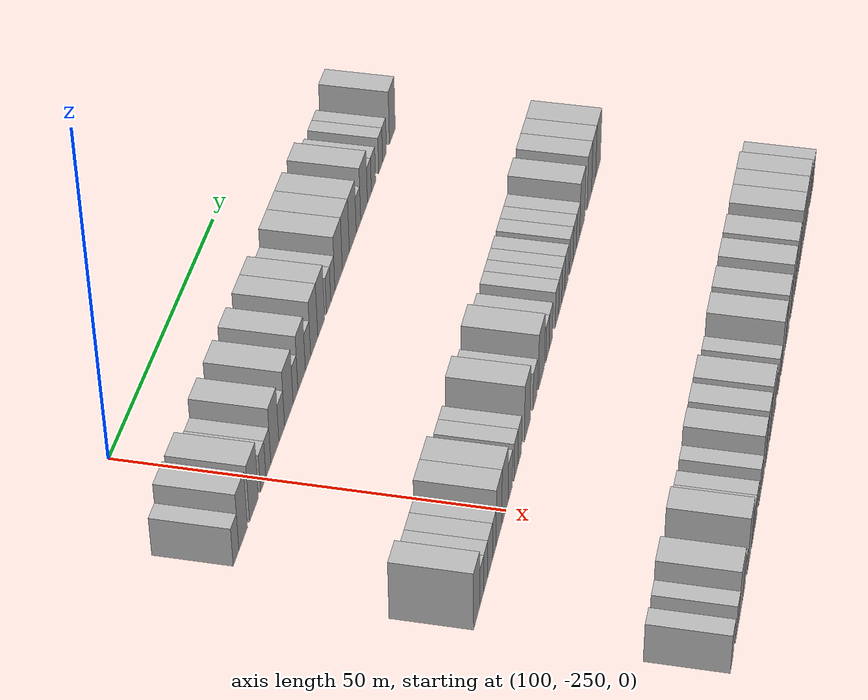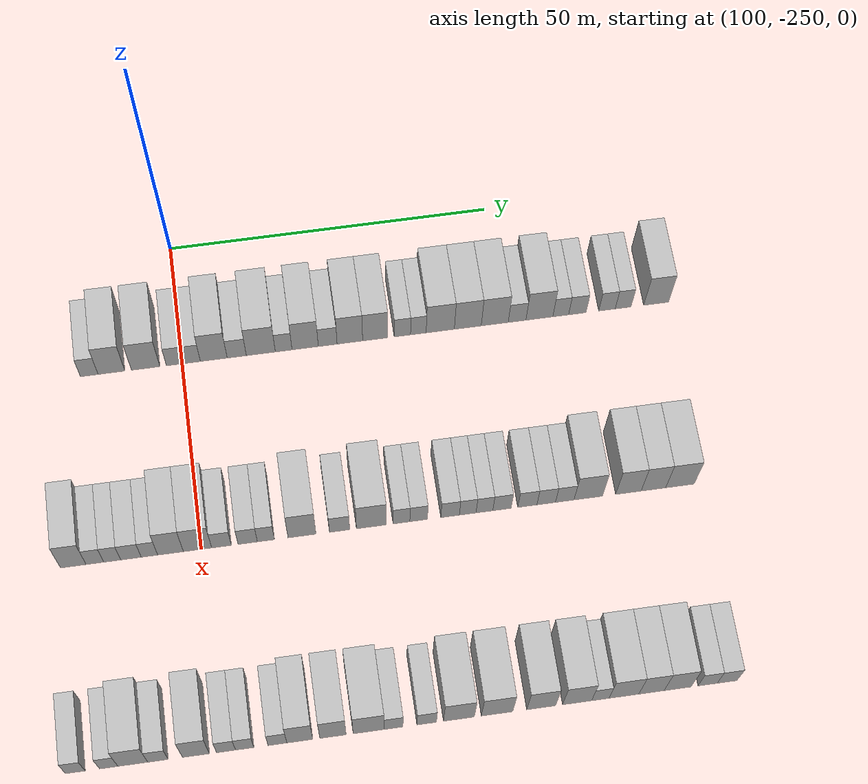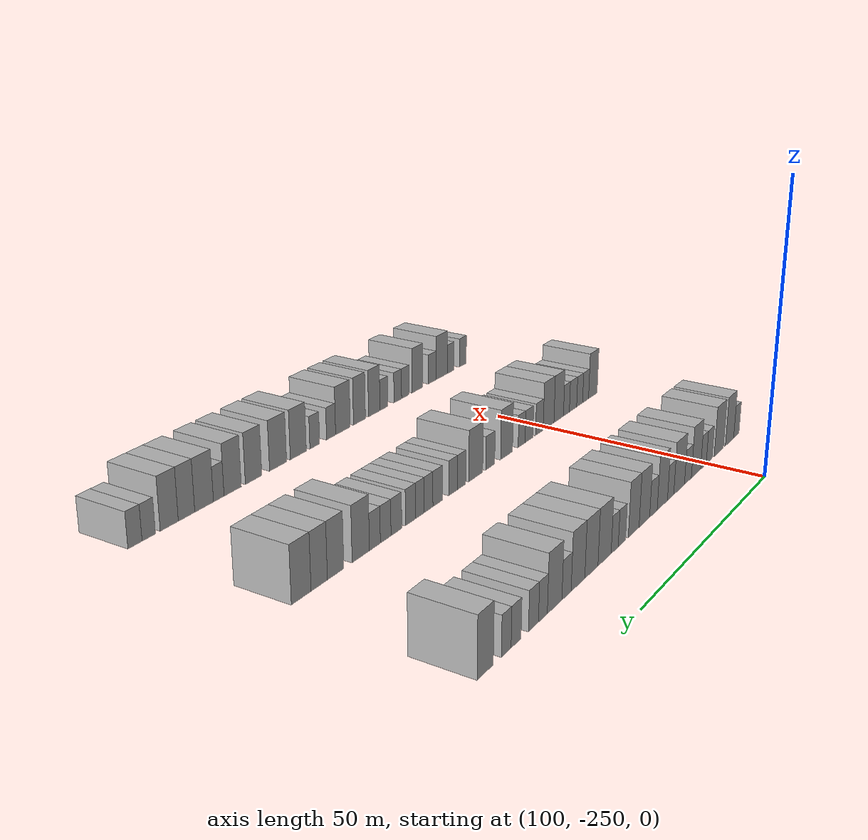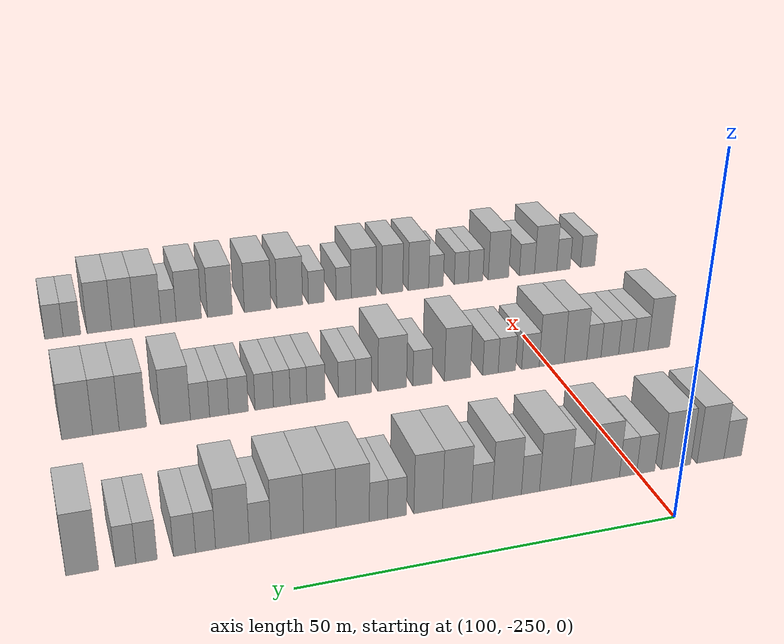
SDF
<sdf version="1.6">
 <world name="default">
  <model name="building_761">
   <static>1</static>
   <pose>115.0000 -264.1922 0 0.000000 0.000000 0.000000</pose>
   <link name="link">
    <pose>0 0 3.00 0 0 0</pose>
    <collision name="collision"><geometry><box><size>10.0000 2.6945 6.0000</size></box></geometry></collision>
    <visual name="visual">
     <cast_shadows>0</cast_shadows>
     <geometry><box><size>10.0000 2.6945 6.0000</size></box></geometry>
     <material>
      <script>
       <uri>model://HANNAS_wall/materials/scripts</uri>
       <uri>model://HANNAS_wall/materials/textures</uri>
       <name>vrc/HANNAS_wall</name>
      </script>
     </material>
    </visual>
   </link>
  </model>
  <model name="building_762">
   <static>1</static>
   <pose>115.0000 -260.7992 0 0.000000 0.000000 0.000000</pose>
   <link name="link">
    <pose>0 0 4.50 0 0 0</pose>
    <collision name="collision"><geometry><box><size>10.0000 4.0916 9.0000</size></box></geometry></collision>
    <visual name="visual">
     <cast_shadows>0</cast_shadows>
     <geometry><box><size>10.0000 4.0916 9.0000</size></box></geometry>
     <material>
      <script>
       <uri>model://HANNAS_wall/materials/scripts</uri>
       <uri>model://HANNAS_wall/materials/textures</uri>
       <name>vrc/HANNAS_wall</name>
      </script>
     </material>
    </visual>
   </link>
  </model>
  <model name="building_763">
   <static>1</static>
   <pose>115.0000 -255.5739 0 0.000000 0.000000 0.000000</pose>
   <link name="link">
    <pose>0 0 4.50 0 0 0</pose>
    <collision name="collision"><geometry><box><size>10.0000 4.3588 9.0000</size></box></geometry></collision>
    <visual name="visual">
     <cast_shadows>0</cast_shadows>
     <geometry><box><size>10.0000 4.3588 9.0000</size></box></geometry>
     <material>
      <script>
       <uri>model://HANNAS_wall/materials/scripts</uri>
       <uri>model://HANNAS_wall/materials/textures</uri>
       <name>vrc/HANNAS_wall</name>
      </script>
     </material>
    </visual>
   </link>
  </model>
  <model name="building_764">
   <static>1</static>
   <pose>115.0000 -251.0456 0 0.000000 0.000000 0.000000</pose>
   <link name="link">
    <pose>0 0 3.00 0 0 0</pose>
    <collision name="collision"><geometry><box><size>10.0000 2.6978 6.0000</size></box></geometry></collision>
    <visual name="visual">
     <cast_shadows>0</cast_shadows>
     <geometry><box><size>10.0000 2.6978 6.0000</size></box></geometry>
     <material>
      <script>
       <uri>model://HANNAS_wall/materials/scripts</uri>
       <uri>model://HANNAS_wall/materials/textures</uri>
       <name>vrc/HANNAS_wall</name>
      </script>
     </material>
    </visual>
   </link>
  </model>
  <model name="building_765">
   <static>1</static>
   <pose>115.0000 -248.4335 0 0.000000 0.000000 0.000000</pose>
   <link name="link">
    <pose>0 0 3.00 0 0 0</pose>
    <collision name="collision"><geometry><box><size>10.0000 2.5263 6.0000</size></box></geometry></collision>
    <visual name="visual">
     <cast_shadows>0</cast_shadows>
     <geometry><box><size>10.0000 2.5263 6.0000</size></box></geometry>
     <material>
      <script>
       <uri>model://HANNAS_wall/materials/scripts</uri>
       <uri>model://HANNAS_wall/materials/textures</uri>
       <name>vrc/HANNAS_wall</name>
      </script>
     </material>
    </visual>
   </link>
  </model>
  <model name="building_766">
   <static>1</static>
   <pose>115.0000 -245.1155 0 0.000000 0.000000 0.000000</pose>
   <link name="link">
    <pose>0 0 4.50 0 0 0</pose>
    <collision name="collision"><geometry><box><size>10.0000 4.1097 9.0000</size></box></geometry></collision>
    <visual name="visual">
     <cast_shadows>0</cast_shadows>
     <geometry><box><size>10.0000 4.1097 9.0000</size></box></geometry>
     <material>
      <script>
       <uri>model://HANNAS_wall/materials/scripts</uri>
       <uri>model://HANNAS_wall/materials/textures</uri>
       <name>vrc/HANNAS_wall</name>
      </script>
     </material>
    </visual>
   </link>
  </model>
  <model name="building_767">
   <static>1</static>
   <pose>115.0000 -241.5889 0 0.000000 0.000000 0.000000</pose>
   <link name="link">
    <pose>0 0 3.00 0 0 0</pose>
    <collision name="collision"><geometry><box><size>10.0000 2.9435 6.0000</size></box></geometry></collision>
    <visual name="visual">
     <cast_shadows>0</cast_shadows>
     <geometry><box><size>10.0000 2.9435 6.0000</size></box></geometry>
     <material>
      <script>
       <uri>model://HANNAS_wall/materials/scripts</uri>
       <uri>model://HANNAS_wall/materials/textures</uri>
       <name>vrc/HANNAS_wall</name>
      </script>
     </material>
    </visual>
   </link>
  </model>
  <model name="building_768">
   <static>1</static>
   <pose>115.0000 -237.8833 0 0.000000 0.000000 0.000000</pose>
   <link name="link">
    <pose>0 0 4.50 0 0 0</pose>
    <collision name="collision"><geometry><box><size>10.0000 4.4675 9.0000</size></box></geometry></collision>
    <visual name="visual">
     <cast_shadows>0</cast_shadows>
     <geometry><box><size>10.0000 4.4675 9.0000</size></box></geometry>
     <material>
      <script>
       <uri>model://HANNAS_wall/materials/scripts</uri>
       <uri>model://HANNAS_wall/materials/textures</uri>
       <name>vrc/HANNAS_wall</name>
      </script>
     </material>
    </visual>
   </link>
  </model>
  <model name="building_769">
   <static>1</static>
   <pose>115.0000 -234.3649 0 0.000000 0.000000 0.000000</pose>
   <link name="link">
    <pose>0 0 3.00 0 0 0</pose>
    <collision name="collision"><geometry><box><size>10.0000 2.5693 6.0000</size></box></geometry></collision>
    <visual name="visual">
     <cast_shadows>0</cast_shadows>
     <geometry><box><size>10.0000 2.5693 6.0000</size></box></geometry>
     <material>
      <script>
       <uri>model://HANNAS_wall/materials/scripts</uri>
       <uri>model://HANNAS_wall/materials/textures</uri>
       <name>vrc/HANNAS_wall</name>
      </script>
     </material>
    </visual>
   </link>
  </model>
  <model name="building_770">
   <static>1</static>
   <pose>115.0000 -231.0495 0 0.000000 0.000000 0.000000</pose>
   <link name="link">
    <pose>0 0 4.50 0 0 0</pose>
    <collision name="collision"><geometry><box><size>10.0000 4.0616 9.0000</size></box></geometry></collision>
    <visual name="visual">
     <cast_shadows>0</cast_shadows>
     <geometry><box><size>10.0000 4.0616 9.0000</size></box></geometry>
     <material>
      <script>
       <uri>model://HANNAS_wall/materials/scripts</uri>
       <uri>model://HANNAS_wall/materials/textures</uri>
       <name>vrc/HANNAS_wall</name>
      </script>
     </material>
    </visual>
   </link>
  </model>
  <model name="building_771">
   <static>1</static>
   <pose>115.0000 -227.5654 0 0.000000 0.000000 0.000000</pose>
   <link name="link">
    <pose>0 0 3.00 0 0 0</pose>
    <collision name="collision"><geometry><box><size>10.0000 2.9064 6.0000</size></box></geometry></collision>
    <visual name="visual">
     <cast_shadows>0</cast_shadows>
     <geometry><box><size>10.0000 2.9064 6.0000</size></box></geometry>
     <material>
      <script>
       <uri>model://HANNAS_wall/materials/scripts</uri>
       <uri>model://HANNAS_wall/materials/textures</uri>
       <name>vrc/HANNAS_wall</name>
      </script>
     </material>
    </visual>
   </link>
  </model>
  <model name="building_772">
   <static>1</static>
   <pose>115.0000 -224.1319 0 0.000000 0.000000 0.000000</pose>
   <link name="link">
    <pose>0 0 4.50 0 0 0</pose>
    <collision name="collision"><geometry><box><size>10.0000 3.9606 9.0000</size></box></geometry></collision>
    <visual name="visual">
     <cast_shadows>0</cast_shadows>
     <geometry><box><size>10.0000 3.9606 9.0000</size></box></geometry>
     <material>
      <script>
       <uri>model://HANNAS_wall/materials/scripts</uri>
       <uri>model://HANNAS_wall/materials/textures</uri>
       <name>vrc/HANNAS_wall</name>
      </script>
     </material>
    </visual>
   </link>
  </model>
  <model name="building_773">
   <static>1</static>
   <pose>115.0000 -220.2002 0 0.000000 0.000000 0.000000</pose>
   <link name="link">
    <pose>0 0 4.50 0 0 0</pose>
    <collision name="collision"><geometry><box><size>10.0000 3.9028 9.0000</size></box></geometry></collision>
    <visual name="visual">
     <cast_shadows>0</cast_shadows>
     <geometry><box><size>10.0000 3.9028 9.0000</size></box></geometry>
     <material>
      <script>
       <uri>model://HANNAS_wall/materials/scripts</uri>
       <uri>model://HANNAS_wall/materials/textures</uri>
       <name>vrc/HANNAS_wall</name>
      </script>
     </material>
    </visual>
   </link>
  </model>
  <model name="building_774">
   <static>1</static>
   <pose>115.0000 -215.9825 0 0.000000 0.000000 0.000000</pose>
   <link name="link">
    <pose>0 0 3.00 0 0 0</pose>
    <collision name="collision"><geometry><box><size>10.0000 2.5326 6.0000</size></box></geometry></collision>
    <visual name="visual">
     <cast_shadows>0</cast_shadows>
     <geometry><box><size>10.0000 2.5326 6.0000</size></box></geometry>
     <material>
      <script>
       <uri>model://HANNAS_wall/materials/scripts</uri>
       <uri>model://HANNAS_wall/materials/textures</uri>
       <name>vrc/HANNAS_wall</name>
      </script>
     </material>
    </visual>
   </link>
  </model>
  <model name="building_775">
   <static>1</static>
   <pose>115.0000 -213.5044 0 0.000000 0.000000 0.000000</pose>
   <link name="link">
    <pose>0 0 3.00 0 0 0</pose>
    <collision name="collision"><geometry><box><size>10.0000 2.4236 6.0000</size></box></geometry></collision>
    <visual name="visual">
     <cast_shadows>0</cast_shadows>
     <geometry><box><size>10.0000 2.4236 6.0000</size></box></geometry>
     <material>
      <script>
       <uri>model://HANNAS_wall/materials/scripts</uri>
       <uri>model://HANNAS_wall/materials/textures</uri>
       <name>vrc/HANNAS_wall</name>
      </script>
     </material>
    </visual>
   </link>
  </model>
  <model name="building_776">
   <static>1</static>
   <pose>115.0000 -210.0966 0 0.000000 0.000000 0.000000</pose>
   <link name="link">
    <pose>0 0 4.50 0 0 0</pose>
    <collision name="collision"><geometry><box><size>10.0000 4.3921 9.0000</size></box></geometry></collision>
    <visual name="visual">
     <cast_shadows>0</cast_shadows>
     <geometry><box><size>10.0000 4.3921 9.0000</size></box></geometry>
     <material>
      <script>
       <uri>model://HANNAS_wall/materials/scripts</uri>
       <uri>model://HANNAS_wall/materials/textures</uri>
       <name>vrc/HANNAS_wall</name>
      </script>
     </material>
    </visual>
   </link>
  </model>
  <model name="building_777">
   <static>1</static>
   <pose>115.0000 -205.8003 0 0.000000 0.000000 0.000000</pose>
   <link name="link">
    <pose>0 0 4.50 0 0 0</pose>
    <collision name="collision"><geometry><box><size>10.0000 4.2003 9.0000</size></box></geometry></collision>
    <visual name="visual">
     <cast_shadows>0</cast_shadows>
     <geometry><box><size>10.0000 4.2003 9.0000</size></box></geometry>
     <material>
      <script>
       <uri>model://HANNAS_wall/materials/scripts</uri>
       <uri>model://HANNAS_wall/materials/textures</uri>
       <name>vrc/HANNAS_wall</name>
      </script>
     </material>
    </visual>
   </link>
  </model>
  <model name="building_778">
   <static>1</static>
   <pose>115.0000 -201.5897 0 0.000000 0.000000 0.000000</pose>
   <link name="link">
    <pose>0 0 4.50 0 0 0</pose>
    <collision name="collision"><geometry><box><size>10.0000 4.2209 9.0000</size></box></geometry></collision>
    <visual name="visual">
     <cast_shadows>0</cast_shadows>
     <geometry><box><size>10.0000 4.2209 9.0000</size></box></geometry>
     <material>
      <script>
       <uri>model://HANNAS_wall/materials/scripts</uri>
       <uri>model://HANNAS_wall/materials/textures</uri>
       <name>vrc/HANNAS_wall</name>
      </script>
     </material>
    </visual>
   </link>
  </model>
  <model name="building_779">
   <static>1</static>
   <pose>115.0000 -198.0982 0 0.000000 0.000000 0.000000</pose>
   <link name="link">
    <pose>0 0 3.00 0 0 0</pose>
    <collision name="collision"><geometry><box><size>10.0000 2.7621 6.0000</size></box></geometry></collision>
    <visual name="visual">
     <cast_shadows>0</cast_shadows>
     <geometry><box><size>10.0000 2.7621 6.0000</size></box></geometry>
     <material>
      <script>
       <uri>model://HANNAS_wall/materials/scripts</uri>
       <uri>model://HANNAS_wall/materials/textures</uri>
       <name>vrc/HANNAS_wall</name>
      </script>
     </material>
    </visual>
   </link>
  </model>
  <model name="building_780">
   <static>1</static>
   <pose>115.0000 -194.6081 0 0.000000 0.000000 0.000000</pose>
   <link name="link">
    <pose>0 0 4.50 0 0 0</pose>
    <collision name="collision"><geometry><box><size>10.0000 4.2181 9.0000</size></box></geometry></collision>
    <visual name="visual">
     <cast_shadows>0</cast_shadows>
     <geometry><box><size>10.0000 4.2181 9.0000</size></box></geometry>
     <material>
      <script>
       <uri>model://HANNAS_wall/materials/scripts</uri>
       <uri>model://HANNAS_wall/materials/textures</uri>
       <name>vrc/HANNAS_wall</name>
      </script>
     </material>
    </visual>
   </link>
  </model>
  <model name="building_781">
   <static>1</static>
   <pose>115.0000 -191.2562 0 0.000000 0.000000 0.000000</pose>
   <link name="link">
    <pose>0 0 3.00 0 0 0</pose>
    <collision name="collision"><geometry><box><size>10.0000 2.4857 6.0000</size></box></geometry></collision>
    <visual name="visual">
     <cast_shadows>0</cast_shadows>
     <geometry><box><size>10.0000 2.4857 6.0000</size></box></geometry>
     <material>
      <script>
       <uri>model://HANNAS_wall/materials/scripts</uri>
       <uri>model://HANNAS_wall/materials/textures</uri>
       <name>vrc/HANNAS_wall</name>
      </script>
     </material>
    </visual>
   </link>
  </model>
  <model name="building_782">
   <static>1</static>
   <pose>115.0000 -188.6471 0 0.000000 0.000000 0.000000</pose>
   <link name="link">
    <pose>0 0 3.00 0 0 0</pose>
    <collision name="collision"><geometry><box><size>10.0000 2.7324 6.0000</size></box></geometry></collision>
    <visual name="visual">
     <cast_shadows>0</cast_shadows>
     <geometry><box><size>10.0000 2.7324 6.0000</size></box></geometry>
     <material>
      <script>
       <uri>model://HANNAS_wall/materials/scripts</uri>
       <uri>model://HANNAS_wall/materials/textures</uri>
       <name>vrc/HANNAS_wall</name>
      </script>
     </material>
    </visual>
   </link>
  </model>
  <model name="building_783">
   <static>1</static>
   <pose>115.0000 -183.9854 0 0.000000 0.000000 0.000000</pose>
   <link name="link">
    <pose>0 0 3.00 0 0 0</pose>
    <collision name="collision"><geometry><box><size>10.0000 2.5911 6.0000</size></box></geometry></collision>
    <visual name="visual">
     <cast_shadows>0</cast_shadows>
     <geometry><box><size>10.0000 2.5911 6.0000</size></box></geometry>
     <material>
      <script>
       <uri>model://HANNAS_wall/materials/scripts</uri>
       <uri>model://HANNAS_wall/materials/textures</uri>
       <name>vrc/HANNAS_wall</name>
      </script>
     </material>
    </visual>
   </link>
  </model>
  <model name="building_784">
   <static>1</static>
   <pose>115.0000 -181.4441 0 0.000000 0.000000 0.000000</pose>
   <link name="link">
    <pose>0 0 3.00 0 0 0</pose>
    <collision name="collision"><geometry><box><size>10.0000 2.4915 6.0000</size></box></geometry></collision>
    <visual name="visual">
     <cast_shadows>0</cast_shadows>
     <geometry><box><size>10.0000 2.4915 6.0000</size></box></geometry>
     <material>
      <script>
       <uri>model://HANNAS_wall/materials/scripts</uri>
       <uri>model://HANNAS_wall/materials/textures</uri>
       <name>vrc/HANNAS_wall</name>
      </script>
     </material>
    </visual>
   </link>
  </model>
  <model name="building_785">
   <static>1</static>
   <pose>115.0000 -176.2341 0 0.000000 0.000000 0.000000</pose>
   <link name="link">
    <pose>0 0 4.50 0 0 0</pose>
    <collision name="collision"><geometry><box><size>10.0000 3.9285 9.0000</size></box></geometry></collision>
    <visual name="visual">
     <cast_shadows>0</cast_shadows>
     <geometry><box><size>10.0000 3.9285 9.0000</size></box></geometry>
     <material>
      <script>
       <uri>model://HANNAS_wall/materials/scripts</uri>
       <uri>model://HANNAS_wall/materials/textures</uri>
       <name>vrc/HANNAS_wall</name>
      </script>
     </material>
    </visual>
   </link>
  </model>
  <model name="building_999">
   <static>1</static>
   <pose>145.0000 -268.7263 0 0.000000 0.000000 0.000000</pose>
   <link name="link">
    <pose>0 0 4.50 0 0 0</pose>
    <collision name="collision"><geometry><box><size>10.0000 3.7339 9.0000</size></box></geometry></collision>
    <visual name="visual">
     <cast_shadows>0</cast_shadows>
     <geometry><box><size>10.0000 3.7339 9.0000</size></box></geometry>
     <material>
      <script>
       <uri>model://HANNAS_wall/materials/scripts</uri>
       <uri>model://HANNAS_wall/materials/textures</uri>
       <name>vrc/HANNAS_wall</name>
      </script>
     </material>
    </visual>
   </link>
  </model>
  <model name="building_1000">
   <static>1</static>
   <pose>145.0000 -265.5742 0 0.000000 0.000000 0.000000</pose>
   <link name="link">
    <pose>0 0 3.00 0 0 0</pose>
    <collision name="collision"><geometry><box><size>10.0000 2.5704 6.0000</size></box></geometry></collision>
    <visual name="visual">
     <cast_shadows>0</cast_shadows>
     <geometry><box><size>10.0000 2.5704 6.0000</size></box></geometry>
     <material>
      <script>
       <uri>model://HANNAS_wall/materials/scripts</uri>
       <uri>model://HANNAS_wall/materials/textures</uri>
       <name>vrc/HANNAS_wall</name>
      </script>
     </material>
    </visual>
   </link>
  </model>
  <model name="building_1001">
   <static>1</static>
   <pose>145.0000 -263.0412 0 0.000000 0.000000 0.000000</pose>
   <link name="link">
    <pose>0 0 3.00 0 0 0</pose>
    <collision name="collision"><geometry><box><size>10.0000 2.4956 6.0000</size></box></geometry></collision>
    <visual name="visual">
     <cast_shadows>0</cast_shadows>
     <geometry><box><size>10.0000 2.4956 6.0000</size></box></geometry>
     <material>
      <script>
       <uri>model://HANNAS_wall/materials/scripts</uri>
       <uri>model://HANNAS_wall/materials/textures</uri>
       <name>vrc/HANNAS_wall</name>
      </script>
     </material>
    </visual>
   </link>
  </model>
  <model name="building_1002">
   <static>1</static>
   <pose>145.0000 -260.2935 0 0.000000 0.000000 0.000000</pose>
   <link name="link">
    <pose>0 0 3.00 0 0 0</pose>
    <collision name="collision"><geometry><box><size>10.0000 2.9998 6.0000</size></box></geometry></collision>
    <visual name="visual">
     <cast_shadows>0</cast_shadows>
     <geometry><box><size>10.0000 2.9998 6.0000</size></box></geometry>
     <material>
      <script>
       <uri>model://HANNAS_wall/materials/scripts</uri>
       <uri>model://HANNAS_wall/materials/textures</uri>
       <name>vrc/HANNAS_wall</name>
      </script>
     </material>
    </visual>
   </link>
  </model>
  <model name="building_1003">
   <static>1</static>
   <pose>145.0000 -257.5875 0 0.000000 0.000000 0.000000</pose>
   <link name="link">
    <pose>0 0 3.00 0 0 0</pose>
    <collision name="collision"><geometry><box><size>10.0000 2.4123 6.0000</size></box></geometry></collision>
    <visual name="visual">
     <cast_shadows>0</cast_shadows>
     <geometry><box><size>10.0000 2.4123 6.0000</size></box></geometry>
     <material>
      <script>
       <uri>model://HANNAS_wall/materials/scripts</uri>
       <uri>model://HANNAS_wall/materials/textures</uri>
       <name>vrc/HANNAS_wall</name>
      </script>
     </material>
    </visual>
   </link>
  </model>
  <model name="building_1004">
   <static>1</static>
   <pose>145.0000 -254.4966 0 0.000000 0.000000 0.000000</pose>
   <link name="link">
    <pose>0 0 4.50 0 0 0</pose>
    <collision name="collision"><geometry><box><size>10.0000 3.7697 9.0000</size></box></geometry></collision>
    <visual name="visual">
     <cast_shadows>0</cast_shadows>
     <geometry><box><size>10.0000 3.7697 9.0000</size></box></geometry>
     <material>
      <script>
       <uri>model://HANNAS_wall/materials/scripts</uri>
       <uri>model://HANNAS_wall/materials/textures</uri>
       <name>vrc/HANNAS_wall</name>
      </script>
     </material>
    </visual>
   </link>
  </model>
  <model name="building_1005">
   <static>1</static>
   <pose>145.0000 -250.5280 0 0.000000 0.000000 0.000000</pose>
   <link name="link">
    <pose>0 0 4.50 0 0 0</pose>
    <collision name="collision"><geometry><box><size>10.0000 4.1675 9.0000</size></box></geometry></collision>
    <visual name="visual">
     <cast_shadows>0</cast_shadows>
     <geometry><box><size>10.0000 4.1675 9.0000</size></box></geometry>
     <material>
      <script>
       <uri>model://HANNAS_wall/materials/scripts</uri>
       <uri>model://HANNAS_wall/materials/textures</uri>
       <name>vrc/HANNAS_wall</name>
      </script>
     </material>
    </visual>
   </link>
  </model>
  <model name="building_1006">
   <static>1</static>
   <pose>145.0000 -247.0011 0 0.000000 0.000000 0.000000</pose>
   <link name="link">
    <pose>0 0 3.00 0 0 0</pose>
    <collision name="collision"><geometry><box><size>10.0000 2.8861 6.0000</size></box></geometry></collision>
    <visual name="visual">
     <cast_shadows>0</cast_shadows>
     <geometry><box><size>10.0000 2.8861 6.0000</size></box></geometry>
     <material>
      <script>
       <uri>model://HANNAS_wall/materials/scripts</uri>
       <uri>model://HANNAS_wall/materials/textures</uri>
       <name>vrc/HANNAS_wall</name>
      </script>
     </material>
    </visual>
   </link>
  </model>
  <model name="building_1007">
   <static>1</static>
   <pose>145.0000 -243.1381 0 0.000000 0.000000 0.000000</pose>
   <link name="link">
    <pose>0 0 3.00 0 0 0</pose>
    <collision name="collision"><geometry><box><size>10.0000 2.8399 6.0000</size></box></geometry></collision>
    <visual name="visual">
     <cast_shadows>0</cast_shadows>
     <geometry><box><size>10.0000 2.8399 6.0000</size></box></geometry>
     <material>
      <script>
       <uri>model://HANNAS_wall/materials/scripts</uri>
       <uri>model://HANNAS_wall/materials/textures</uri>
       <name>vrc/HANNAS_wall</name>
      </script>
     </material>
    </visual>
   </link>
  </model>
  <model name="building_1008">
   <static>1</static>
   <pose>145.0000 -240.4597 0 0.000000 0.000000 0.000000</pose>
   <link name="link">
    <pose>0 0 3.00 0 0 0</pose>
    <collision name="collision"><geometry><box><size>10.0000 2.5168 6.0000</size></box></geometry></collision>
    <visual name="visual">
     <cast_shadows>0</cast_shadows>
     <geometry><box><size>10.0000 2.5168 6.0000</size></box></geometry>
     <material>
      <script>
       <uri>model://HANNAS_wall/materials/scripts</uri>
       <uri>model://HANNAS_wall/materials/textures</uri>
       <name>vrc/HANNAS_wall</name>
      </script>
     </material>
    </visual>
   </link>
  </model>
  <model name="building_1009">
   <static>1</static>
   <pose>145.0000 -235.1329 0 0.000000 0.000000 0.000000</pose>
   <link name="link">
    <pose>0 0 4.50 0 0 0</pose>
    <collision name="collision"><geometry><box><size>10.0000 4.1369 9.0000</size></box></geometry></collision>
    <visual name="visual">
     <cast_shadows>0</cast_shadows>
     <geometry><box><size>10.0000 4.1369 9.0000</size></box></geometry>
     <material>
      <script>
       <uri>model://HANNAS_wall/materials/scripts</uri>
       <uri>model://HANNAS_wall/materials/textures</uri>
       <name>vrc/HANNAS_wall</name>
      </script>
     </material>
    </visual>
   </link>
  </model>
  <model name="building_1010">
   <static>1</static>
   <pose>145.0000 -229.5706 0 0.000000 0.000000 0.000000</pose>
   <link name="link">
    <pose>0 0 3.00 0 0 0</pose>
    <collision name="collision"><geometry><box><size>10.0000 2.9878 6.0000</size></box></geometry></collision>
    <visual name="visual">
     <cast_shadows>0</cast_shadows>
     <geometry><box><size>10.0000 2.9878 6.0000</size></box></geometry>
     <material>
      <script>
       <uri>model://HANNAS_wall/materials/scripts</uri>
       <uri>model://HANNAS_wall/materials/textures</uri>
       <name>vrc/HANNAS_wall</name>
      </script>
     </material>
    </visual>
   </link>
  </model>
  <model name="building_1011">
   <static>1</static>
   <pose>145.0000 -224.8548 0 0.000000 0.000000 0.000000</pose>
   <link name="link">
    <pose>0 0 4.50 0 0 0</pose>
    <collision name="collision"><geometry><box><size>10.0000 4.4438 9.0000</size></box></geometry></collision>
    <visual name="visual">
     <cast_shadows>0</cast_shadows>
     <geometry><box><size>10.0000 4.4438 9.0000</size></box></geometry>
     <material>
      <script>
       <uri>model://HANNAS_wall/materials/scripts</uri>
       <uri>model://HANNAS_wall/materials/textures</uri>
       <name>vrc/HANNAS_wall</name>
      </script>
     </material>
    </visual>
   </link>
  </model>
  <model name="building_1012">
   <static>1</static>
   <pose>145.0000 -220.3880 0 0.000000 0.000000 0.000000</pose>
   <link name="link">
    <pose>0 0 3.00 0 0 0</pose>
    <collision name="collision"><geometry><box><size>10.0000 2.4898 6.0000</size></box></geometry></collision>
    <visual name="visual">
     <cast_shadows>0</cast_shadows>
     <geometry><box><size>10.0000 2.4898 6.0000</size></box></geometry>
     <material>
      <script>
       <uri>model://HANNAS_wall/materials/scripts</uri>
       <uri>model://HANNAS_wall/materials/textures</uri>
       <name>vrc/HANNAS_wall</name>
      </script>
     </material>
    </visual>
   </link>
  </model>
  <model name="building_1013">
   <static>1</static>
   <pose>145.0000 -217.8333 0 0.000000 0.000000 0.000000</pose>
   <link name="link">
    <pose>0 0 3.00 0 0 0</pose>
    <collision name="collision"><geometry><box><size>10.0000 2.6196 6.0000</size></box></geometry></collision>
    <visual name="visual">
     <cast_shadows>0</cast_shadows>
     <geometry><box><size>10.0000 2.6196 6.0000</size></box></geometry>
     <material>
      <script>
       <uri>model://HANNAS_wall/materials/scripts</uri>
       <uri>model://HANNAS_wall/materials/textures</uri>
       <name>vrc/HANNAS_wall</name>
      </script>
     </material>
    </visual>
   </link>
  </model>
  <model name="building_1014">
   <static>1</static>
   <pose>145.0000 -213.1399 0 0.000000 0.000000 0.000000</pose>
   <link name="link">
    <pose>0 0 3.00 0 0 0</pose>
    <collision name="collision"><geometry><box><size>10.0000 2.7671 6.0000</size></box></geometry></collision>
    <visual name="visual">
     <cast_shadows>0</cast_shadows>
     <geometry><box><size>10.0000 2.7671 6.0000</size></box></geometry>
     <material>
      <script>
       <uri>model://HANNAS_wall/materials/scripts</uri>
       <uri>model://HANNAS_wall/materials/textures</uri>
       <name>vrc/HANNAS_wall</name>
      </script>
     </material>
    </visual>
   </link>
  </model>
  <model name="building_1015">
   <static>1</static>
   <pose>145.0000 -210.5131 0 0.000000 0.000000 0.000000</pose>
   <link name="link">
    <pose>0 0 3.00 0 0 0</pose>
    <collision name="collision"><geometry><box><size>10.0000 2.4866 6.0000</size></box></geometry></collision>
    <visual name="visual">
     <cast_shadows>0</cast_shadows>
     <geometry><box><size>10.0000 2.4866 6.0000</size></box></geometry>
     <material>
      <script>
       <uri>model://HANNAS_wall/materials/scripts</uri>
       <uri>model://HANNAS_wall/materials/textures</uri>
       <name>vrc/HANNAS_wall</name>
      </script>
     </material>
    </visual>
   </link>
  </model>
  <model name="building_1016">
   <static>1</static>
   <pose>145.0000 -208.0182 0 0.000000 0.000000 0.000000</pose>
   <link name="link">
    <pose>0 0 3.00 0 0 0</pose>
    <collision name="collision"><geometry><box><size>10.0000 2.5031 6.0000</size></box></geometry></collision>
    <visual name="visual">
     <cast_shadows>0</cast_shadows>
     <geometry><box><size>10.0000 2.5031 6.0000</size></box></geometry>
     <material>
      <script>
       <uri>model://HANNAS_wall/materials/scripts</uri>
       <uri>model://HANNAS_wall/materials/textures</uri>
       <name>vrc/HANNAS_wall</name>
      </script>
     </material>
    </visual>
   </link>
  </model>
  <model name="building_1017">
   <static>1</static>
   <pose>145.0000 -205.3972 0 0.000000 0.000000 0.000000</pose>
   <link name="link">
    <pose>0 0 3.00 0 0 0</pose>
    <collision name="collision"><geometry><box><size>10.0000 2.7390 6.0000</size></box></geometry></collision>
    <visual name="visual">
     <cast_shadows>0</cast_shadows>
     <geometry><box><size>10.0000 2.7390 6.0000</size></box></geometry>
     <material>
      <script>
       <uri>model://HANNAS_wall/materials/scripts</uri>
       <uri>model://HANNAS_wall/materials/textures</uri>
       <name>vrc/HANNAS_wall</name>
      </script>
     </material>
    </visual>
   </link>
  </model>
  <model name="building_1018">
   <static>1</static>
   <pose>145.0000 -201.5928 0 0.000000 0.000000 0.000000</pose>
   <link name="link">
    <pose>0 0 3.00 0 0 0</pose>
    <collision name="collision"><geometry><box><size>10.0000 2.8700 6.0000</size></box></geometry></collision>
    <visual name="visual">
     <cast_shadows>0</cast_shadows>
     <geometry><box><size>10.0000 2.8700 6.0000</size></box></geometry>
     <material>
      <script>
       <uri>model://HANNAS_wall/materials/scripts</uri>
       <uri>model://HANNAS_wall/materials/textures</uri>
       <name>vrc/HANNAS_wall</name>
      </script>
     </material>
    </visual>
   </link>
  </model>
  <model name="building_1019">
   <static>1</static>
   <pose>145.0000 -198.7673 0 0.000000 0.000000 0.000000</pose>
   <link name="link">
    <pose>0 0 3.00 0 0 0</pose>
    <collision name="collision"><geometry><box><size>10.0000 2.7810 6.0000</size></box></geometry></collision>
    <visual name="visual">
     <cast_shadows>0</cast_shadows>
     <geometry><box><size>10.0000 2.7810 6.0000</size></box></geometry>
     <material>
      <script>
       <uri>model://HANNAS_wall/materials/scripts</uri>
       <uri>model://HANNAS_wall/materials/textures</uri>
       <name>vrc/HANNAS_wall</name>
      </script>
     </material>
    </visual>
   </link>
  </model>
  <model name="building_1020">
   <static>1</static>
   <pose>145.0000 -195.9831 0 0.000000 0.000000 0.000000</pose>
   <link name="link">
    <pose>0 0 3.00 0 0 0</pose>
    <collision name="collision"><geometry><box><size>10.0000 2.7873 6.0000</size></box></geometry></collision>
    <visual name="visual">
     <cast_shadows>0</cast_shadows>
     <geometry><box><size>10.0000 2.7873 6.0000</size></box></geometry>
     <material>
      <script>
       <uri>model://HANNAS_wall/materials/scripts</uri>
       <uri>model://HANNAS_wall/materials/textures</uri>
       <name>vrc/HANNAS_wall</name>
      </script>
     </material>
    </visual>
   </link>
  </model>
  <model name="building_1021">
   <static>1</static>
   <pose>145.0000 -192.4478 0 0.000000 0.000000 0.000000</pose>
   <link name="link">
    <pose>0 0 4.50 0 0 0</pose>
    <collision name="collision"><geometry><box><size>10.0000 4.2832 9.0000</size></box></geometry></collision>
    <visual name="visual">
     <cast_shadows>0</cast_shadows>
     <geometry><box><size>10.0000 4.2832 9.0000</size></box></geometry>
     <material>
      <script>
       <uri>model://HANNAS_wall/materials/scripts</uri>
       <uri>model://HANNAS_wall/materials/textures</uri>
       <name>vrc/HANNAS_wall</name>
      </script>
     </material>
    </visual>
   </link>
  </model>
  <model name="building_1022">
   <static>1</static>
   <pose>145.0000 -186.3847 0 0.000000 0.000000 0.000000</pose>
   <link name="link">
    <pose>0 0 4.50 0 0 0</pose>
    <collision name="collision"><geometry><box><size>10.0000 3.8430 9.0000</size></box></geometry></collision>
    <visual name="visual">
     <cast_shadows>0</cast_shadows>
     <geometry><box><size>10.0000 3.8430 9.0000</size></box></geometry>
     <material>
      <script>
       <uri>model://HANNAS_wall/materials/scripts</uri>
       <uri>model://HANNAS_wall/materials/textures</uri>
       <name>vrc/HANNAS_wall</name>
      </script>
     </material>
    </visual>
   </link>
  </model>
  <model name="building_1023">
   <static>1</static>
   <pose>145.0000 -182.6108 0 0.000000 0.000000 0.000000</pose>
   <link name="link">
    <pose>0 0 4.50 0 0 0</pose>
    <collision name="collision"><geometry><box><size>10.0000 3.7047 9.0000</size></box></geometry></collision>
    <visual name="visual">
     <cast_shadows>0</cast_shadows>
     <geometry><box><size>10.0000 3.7047 9.0000</size></box></geometry>
     <material>
      <script>
       <uri>model://HANNAS_wall/materials/scripts</uri>
       <uri>model://HANNAS_wall/materials/textures</uri>
       <name>vrc/HANNAS_wall</name>
      </script>
     </material>
    </visual>
   </link>
  </model>
  <model name="building_1024">
   <static>1</static>
   <pose>145.0000 -178.5997 0 0.000000 0.000000 0.000000</pose>
   <link name="link">
    <pose>0 0 4.50 0 0 0</pose>
    <collision name="collision"><geometry><box><size>10.0000 4.3174 9.0000</size></box></geometry></collision>
    <visual name="visual">
     <cast_shadows>0</cast_shadows>
     <geometry><box><size>10.0000 4.3174 9.0000</size></box></geometry>
     <material>
      <script>
       <uri>model://HANNAS_wall/materials/scripts</uri>
       <uri>model://HANNAS_wall/materials/textures</uri>
       <name>vrc/HANNAS_wall</name>
      </script>
     </material>
    </visual>
   </link>
  </model>
  <model name="building_1239">
   <static>1</static>
   <pose>175.0000 -270.5364 0 0.000000 0.000000 0.000000</pose>
   <link name="link">
    <pose>0 0 3.00 0 0 0</pose>
    <collision name="collision"><geometry><box><size>10.0000 2.7461 6.0000</size></box></geometry></collision>
    <visual name="visual">
     <cast_shadows>0</cast_shadows>
     <geometry><box><size>10.0000 2.7461 6.0000</size></box></geometry>
     <material>
      <script>
       <uri>model://HANNAS_wall/materials/scripts</uri>
       <uri>model://HANNAS_wall/materials/textures</uri>
       <name>vrc/HANNAS_wall</name>
      </script>
     </material>
    </visual>
   </link>
  </model>
  <model name="building_1240">
   <static>1</static>
   <pose>175.0000 -265.8859 0 0.000000 0.000000 0.000000</pose>
   <link name="link">
    <pose>0 0 3.00 0 0 0</pose>
    <collision name="collision"><geometry><box><size>10.0000 2.5550 6.0000</size></box></geometry></collision>
    <visual name="visual">
     <cast_shadows>0</cast_shadows>
     <geometry><box><size>10.0000 2.5550 6.0000</size></box></geometry>
     <material>
      <script>
       <uri>model://HANNAS_wall/materials/scripts</uri>
       <uri>model://HANNAS_wall/materials/textures</uri>
       <name>vrc/HANNAS_wall</name>
      </script>
     </material>
    </visual>
   </link>
  </model>
  <model name="building_1241">
   <static>1</static>
   <pose>175.0000 -262.5115 0 0.000000 0.000000 0.000000</pose>
   <link name="link">
    <pose>0 0 4.50 0 0 0</pose>
    <collision name="collision"><geometry><box><size>10.0000 4.1938 9.0000</size></box></geometry></collision>
    <visual name="visual">
     <cast_shadows>0</cast_shadows>
     <geometry><box><size>10.0000 4.1938 9.0000</size></box></geometry>
     <material>
      <script>
       <uri>model://HANNAS_wall/materials/scripts</uri>
       <uri>model://HANNAS_wall/materials/textures</uri>
       <name>vrc/HANNAS_wall</name>
      </script>
     </material>
    </visual>
   </link>
  </model>
  <model name="building_1242">
   <static>1</static>
   <pose>175.0000 -258.9891 0 0.000000 0.000000 0.000000</pose>
   <link name="link">
    <pose>0 0 3.00 0 0 0</pose>
    <collision name="collision"><geometry><box><size>10.0000 2.8510 6.0000</size></box></geometry></collision>
    <visual name="visual">
     <cast_shadows>0</cast_shadows>
     <geometry><box><size>10.0000 2.8510 6.0000</size></box></geometry>
     <material>
      <script>
       <uri>model://HANNAS_wall/materials/scripts</uri>
       <uri>model://HANNAS_wall/materials/textures</uri>
       <name>vrc/HANNAS_wall</name>
      </script>
     </material>
    </visual>
   </link>
  </model>
  <model name="building_1243">
   <static>1</static>
   <pose>175.0000 -253.6664 0 0.000000 0.000000 0.000000</pose>
   <link name="link">
    <pose>0 0 4.50 0 0 0</pose>
    <collision name="collision"><geometry><box><size>10.0000 3.7943 9.0000</size></box></geometry></collision>
    <visual name="visual">
     <cast_shadows>0</cast_shadows>
     <geometry><box><size>10.0000 3.7943 9.0000</size></box></geometry>
     <material>
      <script>
       <uri>model://HANNAS_wall/materials/scripts</uri>
       <uri>model://HANNAS_wall/materials/textures</uri>
       <name>vrc/HANNAS_wall</name>
      </script>
     </material>
    </visual>
   </link>
  </model>
  <model name="building_1244">
   <static>1</static>
   <pose>175.0000 -249.4340 0 0.000000 0.000000 0.000000</pose>
   <link name="link">
    <pose>0 0 3.00 0 0 0</pose>
    <collision name="collision"><geometry><box><size>10.0000 2.6706 6.0000</size></box></geometry></collision>
    <visual name="visual">
     <cast_shadows>0</cast_shadows>
     <geometry><box><size>10.0000 2.6706 6.0000</size></box></geometry>
     <material>
      <script>
       <uri>model://HANNAS_wall/materials/scripts</uri>
       <uri>model://HANNAS_wall/materials/textures</uri>
       <name>vrc/HANNAS_wall</name>
      </script>
     </material>
    </visual>
   </link>
  </model>
  <model name="building_1245">
   <static>1</static>
   <pose>175.0000 -246.8101 0 0.000000 0.000000 0.000000</pose>
   <link name="link">
    <pose>0 0 3.00 0 0 0</pose>
    <collision name="collision"><geometry><box><size>10.0000 2.5773 6.0000</size></box></geometry></collision>
    <visual name="visual">
     <cast_shadows>0</cast_shadows>
     <geometry><box><size>10.0000 2.5773 6.0000</size></box></geometry>
     <material>
      <script>
       <uri>model://HANNAS_wall/materials/scripts</uri>
       <uri>model://HANNAS_wall/materials/textures</uri>
       <name>vrc/HANNAS_wall</name>
      </script>
     </material>
    </visual>
   </link>
  </model>
  <model name="building_1246">
   <static>1</static>
   <pose>175.0000 -242.1994 0 0.000000 0.000000 0.000000</pose>
   <link name="link">
    <pose>0 0 3.00 0 0 0</pose>
    <collision name="collision"><geometry><box><size>10.0000 2.6440 6.0000</size></box></geometry></collision>
    <visual name="visual">
     <cast_shadows>0</cast_shadows>
     <geometry><box><size>10.0000 2.6440 6.0000</size></box></geometry>
     <material>
      <script>
       <uri>model://HANNAS_wall/materials/scripts</uri>
       <uri>model://HANNAS_wall/materials/textures</uri>
       <name>vrc/HANNAS_wall</name>
      </script>
     </material>
    </visual>
   </link>
  </model>
  <model name="building_1247">
   <static>1</static>
   <pose>175.0000 -239.0468 0 0.000000 0.000000 0.000000</pose>
   <link name="link">
    <pose>0 0 4.50 0 0 0</pose>
    <collision name="collision"><geometry><box><size>10.0000 3.6613 9.0000</size></box></geometry></collision>
    <visual name="visual">
     <cast_shadows>0</cast_shadows>
     <geometry><box><size>10.0000 3.6613 9.0000</size></box></geometry>
     <material>
      <script>
       <uri>model://HANNAS_wall/materials/scripts</uri>
       <uri>model://HANNAS_wall/materials/textures</uri>
       <name>vrc/HANNAS_wall</name>
      </script>
     </material>
    </visual>
   </link>
  </model>
  <model name="building_1248">
   <static>1</static>
   <pose>175.0000 -234.3609 0 0.000000 0.000000 0.000000</pose>
   <link name="link">
    <pose>0 0 4.50 0 0 0</pose>
    <collision name="collision"><geometry><box><size>10.0000 3.7105 9.0000</size></box></geometry></collision>
    <visual name="visual">
     <cast_shadows>0</cast_shadows>
     <geometry><box><size>10.0000 3.7105 9.0000</size></box></geometry>
     <material>
      <script>
       <uri>model://HANNAS_wall/materials/scripts</uri>
       <uri>model://HANNAS_wall/materials/textures</uri>
       <name>vrc/HANNAS_wall</name>
      </script>
     </material>
    </visual>
   </link>
  </model>
  <model name="building_1249">
   <static>1</static>
   <pose>175.0000 -229.3038 0 0.000000 0.000000 0.000000</pose>
   <link name="link">
    <pose>0 0 4.50 0 0 0</pose>
    <collision name="collision"><geometry><box><size>10.0000 4.4037 9.0000</size></box></geometry></collision>
    <visual name="visual">
     <cast_shadows>0</cast_shadows>
     <geometry><box><size>10.0000 4.4037 9.0000</size></box></geometry>
     <material>
      <script>
       <uri>model://HANNAS_wall/materials/scripts</uri>
       <uri>model://HANNAS_wall/materials/textures</uri>
       <name>vrc/HANNAS_wall</name>
      </script>
     </material>
    </visual>
   </link>
  </model>
  <model name="building_1250">
   <static>1</static>
   <pose>175.0000 -225.7732 0 0.000000 0.000000 0.000000</pose>
   <link name="link">
    <pose>0 0 3.00 0 0 0</pose>
    <collision name="collision"><geometry><box><size>10.0000 2.6575 6.0000</size></box></geometry></collision>
    <visual name="visual">
     <cast_shadows>0</cast_shadows>
     <geometry><box><size>10.0000 2.6575 6.0000</size></box></geometry>
     <material>
      <script>
       <uri>model://HANNAS_wall/materials/scripts</uri>
       <uri>model://HANNAS_wall/materials/textures</uri>
       <name>vrc/HANNAS_wall</name>
      </script>
     </material>
    </visual>
   </link>
  </model>
  <model name="building_1251">
   <static>1</static>
   <pose>175.0000 -221.0602 0 0.000000 0.000000 0.000000</pose>
   <link name="link">
    <pose>0 0 3.00 0 0 0</pose>
    <collision name="collision"><geometry><box><size>10.0000 2.7685 6.0000</size></box></geometry></collision>
    <visual name="visual">
     <cast_shadows>0</cast_shadows>
     <geometry><box><size>10.0000 2.7685 6.0000</size></box></geometry>
     <material>
      <script>
       <uri>model://HANNAS_wall/materials/scripts</uri>
       <uri>model://HANNAS_wall/materials/textures</uri>
       <name>vrc/HANNAS_wall</name>
      </script>
     </material>
    </visual>
   </link>
  </model>
  <model name="building_1252">
   <static>1</static>
   <pose>175.0000 -216.4749 0 0.000000 0.000000 0.000000</pose>
   <link name="link">
    <pose>0 0 4.50 0 0 0</pose>
    <collision name="collision"><geometry><box><size>10.0000 4.4020 9.0000</size></box></geometry></collision>
    <visual name="visual">
     <cast_shadows>0</cast_shadows>
     <geometry><box><size>10.0000 4.4020 9.0000</size></box></geometry>
     <material>
      <script>
       <uri>model://HANNAS_wall/materials/scripts</uri>
       <uri>model://HANNAS_wall/materials/textures</uri>
       <name>vrc/HANNAS_wall</name>
      </script>
     </material>
    </visual>
   </link>
  </model>
  <model name="building_1253">
   <static>1</static>
   <pose>175.0000 -211.0272 0 0.000000 0.000000 0.000000</pose>
   <link name="link">
    <pose>0 0 4.50 0 0 0</pose>
    <collision name="collision"><geometry><box><size>10.0000 4.4936 9.0000</size></box></geometry></collision>
    <visual name="visual">
     <cast_shadows>0</cast_shadows>
     <geometry><box><size>10.0000 4.4936 9.0000</size></box></geometry>
     <material>
      <script>
       <uri>model://HANNAS_wall/materials/scripts</uri>
       <uri>model://HANNAS_wall/materials/textures</uri>
       <name>vrc/HANNAS_wall</name>
      </script>
     </material>
    </visual>
   </link>
  </model>
  <model name="building_1254">
   <static>1</static>
   <pose>175.0000 -204.7094 0 0.000000 0.000000 0.000000</pose>
   <link name="link">
    <pose>0 0 4.50 0 0 0</pose>
    <collision name="collision"><geometry><box><size>10.0000 4.1419 9.0000</size></box></geometry></collision>
    <visual name="visual">
     <cast_shadows>0</cast_shadows>
     <geometry><box><size>10.0000 4.1419 9.0000</size></box></geometry>
     <material>
      <script>
       <uri>model://HANNAS_wall/materials/scripts</uri>
       <uri>model://HANNAS_wall/materials/textures</uri>
       <name>vrc/HANNAS_wall</name>
      </script>
     </material>
    </visual>
   </link>
  </model>
  <model name="building_1255">
   <static>1</static>
   <pose>175.0000 -199.5521 0 0.000000 0.000000 0.000000</pose>
   <link name="link">
    <pose>0 0 4.50 0 0 0</pose>
    <collision name="collision"><geometry><box><size>10.0000 4.1726 9.0000</size></box></geometry></collision>
    <visual name="visual">
     <cast_shadows>0</cast_shadows>
     <geometry><box><size>10.0000 4.1726 9.0000</size></box></geometry>
     <material>
      <script>
       <uri>model://HANNAS_wall/materials/scripts</uri>
       <uri>model://HANNAS_wall/materials/textures</uri>
       <name>vrc/HANNAS_wall</name>
      </script>
     </material>
    </visual>
   </link>
  </model>
  <model name="building_1256">
   <static>1</static>
   <pose>175.0000 -196.2187 0 0.000000 0.000000 0.000000</pose>
   <link name="link">
    <pose>0 0 3.00 0 0 0</pose>
    <collision name="collision"><geometry><box><size>10.0000 2.4942 6.0000</size></box></geometry></collision>
    <visual name="visual">
     <cast_shadows>0</cast_shadows>
     <geometry><box><size>10.0000 2.4942 6.0000</size></box></geometry>
     <material>
      <script>
       <uri>model://HANNAS_wall/materials/scripts</uri>
       <uri>model://HANNAS_wall/materials/textures</uri>
       <name>vrc/HANNAS_wall</name>
      </script>
     </material>
    </visual>
   </link>
  </model>
  <model name="building_1257">
   <static>1</static>
   <pose>175.0000 -192.8246 0 0.000000 0.000000 0.000000</pose>
   <link name="link">
    <pose>0 0 4.50 0 0 0</pose>
    <collision name="collision"><geometry><box><size>10.0000 4.2939 9.0000</size></box></geometry></collision>
    <visual name="visual">
     <cast_shadows>0</cast_shadows>
     <geometry><box><size>10.0000 4.2939 9.0000</size></box></geometry>
     <material>
      <script>
       <uri>model://HANNAS_wall/materials/scripts</uri>
       <uri>model://HANNAS_wall/materials/textures</uri>
       <name>vrc/HANNAS_wall</name>
      </script>
     </material>
    </visual>
   </link>
  </model>
  <model name="building_1258">
   <static>1</static>
   <pose>175.0000 -188.8489 0 0.000000 0.000000 0.000000</pose>
   <link name="link">
    <pose>0 0 4.50 0 0 0</pose>
    <collision name="collision"><geometry><box><size>10.0000 3.6576 9.0000</size></box></geometry></collision>
    <visual name="visual">
     <cast_shadows>0</cast_shadows>
     <geometry><box><size>10.0000 3.6576 9.0000</size></box></geometry>
     <material>
      <script>
       <uri>model://HANNAS_wall/materials/scripts</uri>
       <uri>model://HANNAS_wall/materials/textures</uri>
       <name>vrc/HANNAS_wall</name>
      </script>
     </material>
    </visual>
   </link>
  </model>
  <model name="building_1259">
   <static>1</static>
   <pose>175.0000 -185.0670 0 0.000000 0.000000 0.000000</pose>
   <link name="link">
    <pose>0 0 4.50 0 0 0</pose>
    <collision name="collision"><geometry><box><size>10.0000 3.9062 9.0000</size></box></geometry></collision>
    <visual name="visual">
     <cast_shadows>0</cast_shadows>
     <geometry><box><size>10.0000 3.9062 9.0000</size></box></geometry>
     <material>
      <script>
       <uri>model://HANNAS_wall/materials/scripts</uri>
       <uri>model://HANNAS_wall/materials/textures</uri>
       <name>vrc/HANNAS_wall</name>
      </script>
     </material>
    </visual>
   </link>
  </model>
  <model name="building_1260">
   <static>1</static>
   <pose>175.0000 -180.7217 0 0.000000 0.000000 0.000000</pose>
   <link name="link">
    <pose>0 0 3.00 0 0 0</pose>
    <collision name="collision"><geometry><box><size>10.0000 2.7844 6.0000</size></box></geometry></collision>
    <visual name="visual">
     <cast_shadows>0</cast_shadows>
     <geometry><box><size>10.0000 2.7844 6.0000</size></box></geometry>
     <material>
      <script>
       <uri>model://HANNAS_wall/materials/scripts</uri>
       <uri>model://HANNAS_wall/materials/textures</uri>
       <name>vrc/HANNAS_wall</name>
      </script>
     </material>
    </visual>
   </link>
  </model>
  <model name="building_1261">
   <static>1</static>
   <pose>175.0000 -177.8889 0 0.000000 0.000000 0.000000</pose>
   <link name="link">
    <pose>0 0 3.00 0 0 0</pose>
    <collision name="collision"><geometry><box><size>10.0000 2.8814 6.0000</size></box></geometry></collision>
    <visual name="visual">
     <cast_shadows>0</cast_shadows>
     <geometry><box><size>10.0000 2.8814 6.0000</size></box></geometry>
     <material>
      <script>
       <uri>model://HANNAS_wall/materials/scripts</uri>
       <uri>model://HANNAS_wall/materials/textures</uri>
       <name>vrc/HANNAS_wall</name>
      </script>
     </material>
    </visual>
   </link>
  </model>
 </world>
</sdf>
